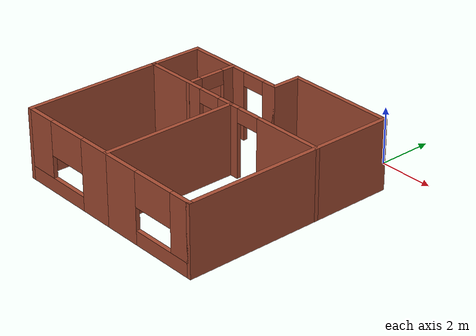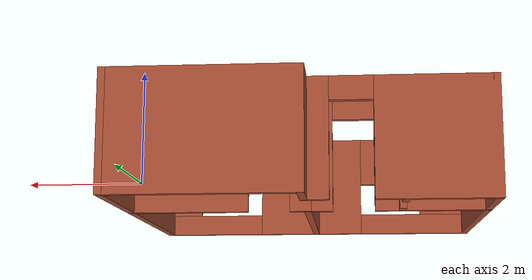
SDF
<?xml version='1.0'?>
<sdf version='1.6'>
  <model name='apartment'>
    <pose frame=''>-2.71612 -5.15016 0 0 -0 0</pose>
    <link name='Wall_12'>
      <collision name='Wall_12_Collision'>
        <geometry>
          <box>
            <size>3 0.15 2.5</size>
          </box>
        </geometry>
        <pose frame=''>0 0 1.25 0 -0 0</pose>
      </collision>
      <visual name='Wall_12_Visual'>
        <pose frame=''>0 0 1.25 0 -0 0</pose>
        <geometry>
          <box>
            <size>3 0.15 2.5</size>
          </box>
        </geometry>
        <material>
          <script>
            <uri>file://media/materials/scripts/gazebo.material</uri>
            <name>Gazebo/Bricks</name>
          </script>
          <ambient>1 1 1 1</ambient>
        </material>
        <meta>
          <layer>0</layer>
        </meta>
      </visual>
      <pose frame=''>3.85 2.425 0 0 -0 -1.5708</pose>
    </link>
    <link name='Wall_14'>
      <pose frame=''>1.925 1 0 0 -0 3.14159</pose>
      <visual name='Wall_14_Visual_0'>
        <pose frame=''>-0.681236 0 1.25 0 -0 0</pose>
        <geometry>
          <box>
            <size>2.63753 0.15 2.5</size>
          </box>
        </geometry>
        <material>
          <script>
            <uri>file://media/materials/scripts/gazebo.material</uri>
            <name>Gazebo/Bricks</name>
          </script>
          <ambient>0.760784 0.662745 0.627451 1</ambient>
        </material>
        <meta>
          <layer>0</layer>
        </meta>
      </visual>
      <collision name='Wall_14_Collision_0'>
        <geometry>
          <box>
            <size>2.63753 0.15 2.5</size>
          </box>
        </geometry>
        <pose frame=''>-0.681236 0 1.25 0 -0 0</pose>
      </collision>
      <visual name='Wall_14_Visual_1'>
        <pose frame=''>1.76876 0 1.25 0 -0 0</pose>
        <geometry>
          <box>
            <size>0.462473 0.15 2.5</size>
          </box>
        </geometry>
        <material>
          <script>
            <uri>file://media/materials/scripts/gazebo.material</uri>
            <name>Gazebo/Bricks</name>
          </script>
          <ambient>0.760784 0.662745 0.627451 1</ambient>
        </material>
        <meta>
          <layer>0</layer>
        </meta>
      </visual>
      <collision name='Wall_14_Collision_1'>
        <geometry>
          <box>
            <size>0.462473 0.15 2.5</size>
          </box>
        </geometry>
        <pose frame=''>1.76876 0 1.25 0 -0 0</pose>
      </collision>
      <visual name='Wall_14_Visual_2'>
        <pose frame=''>1.08753 0 2.25 0 -0 0</pose>
        <geometry>
          <box>
            <size>0.9 0.15 0.5</size>
          </box>
        </geometry>
        <material>
          <script>
            <uri>file://media/materials/scripts/gazebo.material</uri>
            <name>Gazebo/Bricks</name>
          </script>
          <ambient>0.760784 0.662745 0.627451 1</ambient>
        </material>
        <meta>
          <layer>0</layer>
        </meta>
      </visual>
      <collision name='Wall_14_Collision_2'>
        <geometry>
          <box>
            <size>0.9 0.15 0.5</size>
          </box>
        </geometry>
        <pose frame=''>1.08753 0 2.25 0 -0 0</pose>
      </collision>
    </link>
    <link name='Wall_18'>
      <collision name='Wall_18_Collision'>
        <geometry>
          <box>
            <size>5 0.15 2.5</size>
          </box>
        </geometry>
        <pose frame=''>0 0 1.25 0 -0 0</pose>
      </collision>
      <visual name='Wall_18_Visual'>
        <pose frame=''>0 0 1.25 0 -0 0</pose>
        <geometry>
          <box>
            <size>5 0.15 2.5</size>
          </box>
        </geometry>
        <material>
          <script>
            <uri>file://media/materials/scripts/gazebo.material</uri>
            <name>Gazebo/Bricks</name>
          </script>
          <ambient>1 1 1 1</ambient>
        </material>
        <meta>
          <layer>0</layer>
        </meta>
      </visual>
      <pose frame=''>0 -1.425 0 0 -0 -1.5708</pose>
    </link>
    <link name='Wall_19'>
      <pose frame=''>1.925 -3.85 0 0 -0 0</pose>
      <visual name='Wall_19_Visual_0'>
        <pose frame=''>-1.24293 0 1.25 0 -0 0</pose>
        <geometry>
          <box>
            <size>1.51415 0.15 2.5</size>
          </box>
        </geometry>
        <material>
          <script>
            <uri>file://media/materials/scripts/gazebo.material</uri>
            <name>Gazebo/Bricks</name>
          </script>
          <ambient>1 1 1 1</ambient>
        </material>
        <meta>
          <layer>0</layer>
        </meta>
      </visual>
      <collision name='Wall_19_Collision_0'>
        <geometry>
          <box>
            <size>1.51415 0.15 2.5</size>
          </box>
        </geometry>
        <pose frame=''>-1.24293 0 1.25 0 -0 0</pose>
      </collision>
      <visual name='Wall_19_Visual_1'>
        <pose frame=''>0.757074 0 0.25 0 -0 0</pose>
        <geometry>
          <box>
            <size>2.48585 0.15 0.5</size>
          </box>
        </geometry>
        <material>
          <script>
            <uri>file://media/materials/scripts/gazebo.material</uri>
            <name>Gazebo/Bricks</name>
          </script>
          <ambient>1 1 1 1</ambient>
        </material>
        <meta>
          <layer>0</layer>
        </meta>
      </visual>
      <collision name='Wall_19_Collision_1'>
        <geometry>
          <box>
            <size>2.48585 0.15 0.5</size>
          </box>
        </geometry>
        <pose frame=''>0.757074 0 0.25 0 -0 0</pose>
      </collision>
      <visual name='Wall_19_Visual_2'>
        <pose frame=''>1.56451 0 1.5 0 -0 0</pose>
        <geometry>
          <box>
            <size>0.870975 0.15 2</size>
          </box>
        </geometry>
        <material>
          <script>
            <uri>file://media/materials/scripts/gazebo.material</uri>
            <name>Gazebo/Bricks</name>
          </script>
          <ambient>1 1 1 1</ambient>
        </material>
        <meta>
          <layer>0</layer>
        </meta>
      </visual>
      <collision name='Wall_19_Collision_2'>
        <geometry>
          <box>
            <size>0.870975 0.15 2</size>
          </box>
        </geometry>
        <pose frame=''>1.56451 0 1.5 0 -0 0</pose>
      </collision>
      <visual name='Wall_19_Visual_3'>
        <pose frame=''>0.321587 0 1.9 0 -0 0</pose>
        <geometry>
          <box>
            <size>1.61488 0.15 1.2</size>
          </box>
        </geometry>
        <material>
          <script>
            <uri>file://media/materials/scripts/gazebo.material</uri>
            <name>Gazebo/Bricks</name>
          </script>
          <ambient>1 1 1 1</ambient>
        </material>
        <meta>
          <layer>0</layer>
        </meta>
      </visual>
      <collision name='Wall_19_Collision_3'>
        <geometry>
          <box>
            <size>1.61488 0.15 1.2</size>
          </box>
        </geometry>
        <pose frame=''>0.321587 0 1.9 0 -0 0</pose>
      </collision>
    </link>
    <link name='Wall_20'>
      <collision name='Wall_20_Collision'>
        <geometry>
          <box>
            <size>5 0.15 2.5</size>
          </box>
        </geometry>
        <pose frame=''>0 0 1.25 0 -0 0</pose>
      </collision>
      <visual name='Wall_20_Visual'>
        <pose frame=''>0 0 1.25 0 -0 0</pose>
        <geometry>
          <box>
            <size>5 0.15 2.5</size>
          </box>
        </geometry>
        <material>
          <script>
            <uri>file://media/materials/scripts/gazebo.material</uri>
            <name>Gazebo/Bricks</name>
          </script>
          <ambient>1 1 1 1</ambient>
        </material>
        <meta>
          <layer>0</layer>
        </meta>
      </visual>
      <pose frame=''>3.85 -1.425 0 0 -0 1.5708</pose>
    </link>
    <link name='Wall_22'>
      <pose frame=''>-1.925 -3.85 0 0 -0 3.14159</pose>
      <visual name='Wall_22_Visual_0'>
        <pose frame=''>-1.3771 0 1.25 0 -0 0</pose>
        <geometry>
          <box>
            <size>1.2458 0.15 2.5</size>
          </box>
        </geometry>
        <material>
          <script>
            <uri>file://media/materials/scripts/gazebo.material</uri>
            <name>Gazebo/Bricks</name>
          </script>
          <ambient>1 1 1 1</ambient>
        </material>
        <meta>
          <layer>0</layer>
        </meta>
      </visual>
      <collision name='Wall_22_Collision_0'>
        <geometry>
          <box>
            <size>1.2458 0.15 2.5</size>
          </box>
        </geometry>
        <pose frame=''>-1.3771 0 1.25 0 -0 0</pose>
      </collision>
      <visual name='Wall_22_Visual_1'>
        <pose frame=''>0.622901 0 0.25 0 -0 0</pose>
        <geometry>
          <box>
            <size>2.7542 0.15 0.5</size>
          </box>
        </geometry>
        <material>
          <script>
            <uri>file://media/materials/scripts/gazebo.material</uri>
            <name>Gazebo/Bricks</name>
          </script>
          <ambient>1 1 1 1</ambient>
        </material>
        <meta>
          <layer>0</layer>
        </meta>
      </visual>
      <collision name='Wall_22_Collision_1'>
        <geometry>
          <box>
            <size>2.7542 0.15 0.5</size>
          </box>
        </geometry>
        <pose frame=''>0.622901 0 0.25 0 -0 0</pose>
      </collision>
      <visual name='Wall_22_Visual_2'>
        <pose frame=''>1.39273 0 1.5 0 -0 0</pose>
        <geometry>
          <box>
            <size>1.21454 0.15 2</size>
          </box>
        </geometry>
        <material>
          <script>
            <uri>file://media/materials/scripts/gazebo.material</uri>
            <name>Gazebo/Bricks</name>
          </script>
          <ambient>1 1 1 1</ambient>
        </material>
        <meta>
          <layer>0</layer>
        </meta>
      </visual>
      <collision name='Wall_22_Collision_2'>
        <geometry>
          <box>
            <size>1.21454 0.15 2</size>
          </box>
        </geometry>
        <pose frame=''>1.39273 0 1.5 0 -0 0</pose>
      </collision>
      <visual name='Wall_22_Visual_3'>
        <pose frame=''>0.01563 0 1.9 0 -0 0</pose>
        <geometry>
          <box>
            <size>1.53966 0.15 1.2</size>
          </box>
        </geometry>
        <material>
          <script>
            <uri>file://media/materials/scripts/gazebo.material</uri>
            <name>Gazebo/Bricks</name>
          </script>
          <ambient>1 1 1 1</ambient>
        </material>
        <meta>
          <layer>0</layer>
        </meta>
      </visual>
      <collision name='Wall_22_Collision_3'>
        <geometry>
          <box>
            <size>1.53966 0.15 1.2</size>
          </box>
        </geometry>
        <pose frame=''>0.01563 0 1.9 0 -0 0</pose>
      </collision>
    </link>
    <link name='Wall_23'>
      <collision name='Wall_23_Collision'>
        <geometry>
          <box>
            <size>5 0.15 2.5</size>
          </box>
        </geometry>
        <pose frame=''>0 0 1.25 0 -0 0</pose>
      </collision>
      <visual name='Wall_23_Visual'>
        <pose frame=''>0 0 1.25 0 -0 0</pose>
        <geometry>
          <box>
            <size>5 0.15 2.5</size>
          </box>
        </geometry>
        <material>
          <script>
            <uri>file://media/materials/scripts/gazebo.material</uri>
            <name>Gazebo/Bricks</name>
          </script>
          <ambient>1 1 1 1</ambient>
        </material>
        <meta>
          <layer>0</layer>
        </meta>
      </visual>
      <pose frame=''>-3.85 -1.425 0 0 -0 1.5708</pose>
    </link>
    <link name='Wall_24'>
      <pose frame=''>-1.925 1 0 0 -0 0</pose>
      <visual name='Wall_24_Visual_0'>
        <pose frame=''>-0.758531 0 1.25 0 -0 0</pose>
        <geometry>
          <box>
            <size>2.48294 0.15 2.5</size>
          </box>
        </geometry>
        <material>
          <script>
            <uri>file://media/materials/scripts/gazebo.material</uri>
            <name>Gazebo/Bricks</name>
          </script>
          <ambient>1 1 1 1</ambient>
        </material>
        <meta>
          <layer>0</layer>
        </meta>
      </visual>
      <collision name='Wall_24_Collision_0'>
        <geometry>
          <box>
            <size>2.48294 0.15 2.5</size>
          </box>
        </geometry>
        <pose frame=''>-0.758531 0 1.25 0 -0 0</pose>
      </collision>
      <visual name='Wall_24_Visual_1'>
        <pose frame=''>1.69147 0 1.25 0 -0 0</pose>
        <geometry>
          <box>
            <size>0.617061 0.15 2.5</size>
          </box>
        </geometry>
        <material>
          <script>
            <uri>file://media/materials/scripts/gazebo.material</uri>
            <name>Gazebo/Bricks</name>
          </script>
          <ambient>1 1 1 1</ambient>
        </material>
        <meta>
          <layer>0</layer>
        </meta>
      </visual>
      <collision name='Wall_24_Collision_1'>
        <geometry>
          <box>
            <size>0.617061 0.15 2.5</size>
          </box>
        </geometry>
        <pose frame=''>1.69147 0 1.25 0 -0 0</pose>
      </collision>
      <visual name='Wall_24_Visual_2'>
        <pose frame=''>0.932939 0 2.25 0 -0 0</pose>
        <geometry>
          <box>
            <size>0.9 0.15 0.5</size>
          </box>
        </geometry>
        <material>
          <script>
            <uri>file://media/materials/scripts/gazebo.material</uri>
            <name>Gazebo/Bricks</name>
          </script>
          <ambient>1 1 1 1</ambient>
        </material>
        <meta>
          <layer>0</layer>
        </meta>
      </visual>
      <collision name='Wall_24_Collision_2'>
        <geometry>
          <box>
            <size>0.9 0.15 0.5</size>
          </box>
        </geometry>
        <pose frame=''>0.932939 0 2.25 0 -0 0</pose>
      </collision>
    </link>
    <link name='Wall_26'>
      <collision name='Wall_26_Collision'>
        <geometry>
          <box>
            <size>2 0.15 2.5</size>
          </box>
        </geometry>
        <pose frame=''>0 0 1.25 0 -0 0</pose>
      </collision>
      <visual name='Wall_26_Visual'>
        <pose frame=''>0 0 1.25 0 -0 0</pose>
        <geometry>
          <box>
            <size>2 0.15 2.5</size>
          </box>
        </geometry>
        <material>
          <script>
            <uri>file://media/materials/scripts/gazebo.material</uri>
            <name>Gazebo/Bricks</name>
          </script>
          <ambient>1 1 1 1</ambient>
        </material>
        <meta>
          <layer>0</layer>
        </meta>
      </visual>
      <pose frame=''>-3.85 1.925 0 0 -0 1.5708</pose>
    </link>
    <link name='Wall_38'>
      <collision name='Wall_38_Collision'>
        <geometry>
          <box>
            <size>4 0.15 2.5</size>
          </box>
        </geometry>
        <pose frame=''>0 0 1.25 0 -0 0</pose>
      </collision>
      <visual name='Wall_38_Visual'>
        <pose frame=''>0 0 1.25 0 -0 0</pose>
        <geometry>
          <box>
            <size>4 0.15 2.5</size>
          </box>
        </geometry>
        <material>
          <script>
            <uri>file://media/materials/scripts/gazebo.material</uri>
            <name>Gazebo/Bricks</name>
          </script>
          <ambient>0.760784 0.662745 0.627451 1</ambient>
        </material>
        <meta>
          <layer>0</layer>
        </meta>
      </visual>
      <pose frame=''>1.925 3.85 0 0 -0 3.14159</pose>
    </link>
    <link name='Wall_46'>
      <pose frame=''>-1.925 2.85 0 0 -0 0</pose>
      <visual name='Wall_46_Visual_0'>
        <pose frame=''>-0.744312 0 1.25 0 -0 0</pose>
        <geometry>
          <box>
            <size>2.51138 0.15 2.5</size>
          </box>
        </geometry>
        <material>
          <script>
            <uri>file://media/materials/scripts/gazebo.material</uri>
            <name>Gazebo/Bricks</name>
          </script>
          <ambient>1 1 1 1</ambient>
        </material>
        <meta>
          <layer>0</layer>
        </meta>
      </visual>
      <collision name='Wall_46_Collision_0'>
        <geometry>
          <box>
            <size>2.51138 0.15 2.5</size>
          </box>
        </geometry>
        <pose frame=''>-0.744312 0 1.25 0 -0 0</pose>
      </collision>
      <visual name='Wall_46_Visual_1'>
        <pose frame=''>1.70569 0 1.25 0 -0 0</pose>
        <geometry>
          <box>
            <size>0.588623 0.15 2.5</size>
          </box>
        </geometry>
        <material>
          <script>
            <uri>file://media/materials/scripts/gazebo.material</uri>
            <name>Gazebo/Bricks</name>
          </script>
          <ambient>1 1 1 1</ambient>
        </material>
        <meta>
          <layer>0</layer>
        </meta>
      </visual>
      <collision name='Wall_46_Collision_1'>
        <geometry>
          <box>
            <size>0.588623 0.15 2.5</size>
          </box>
        </geometry>
        <pose frame=''>1.70569 0 1.25 0 -0 0</pose>
      </collision>
      <visual name='Wall_46_Visual_2'>
        <pose frame=''>0.961377 0 2.25 0 -0 0</pose>
        <geometry>
          <box>
            <size>0.9 0.15 0.5</size>
          </box>
        </geometry>
        <material>
          <script>
            <uri>file://media/materials/scripts/gazebo.material</uri>
            <name>Gazebo/Bricks</name>
          </script>
          <ambient>1 1 1 1</ambient>
        </material>
        <meta>
          <layer>0</layer>
        </meta>
      </visual>
      <collision name='Wall_46_Collision_2'>
        <geometry>
          <box>
            <size>0.9 0.15 0.5</size>
          </box>
        </geometry>
        <pose frame=''>0.961377 0 2.25 0 -0 0</pose>
      </collision>
    </link>
    <link name='Wall_47'>
      <collision name='Wall_47_Collision'>
        <geometry>
          <box>
            <size>1.15 0.15 2.5</size>
          </box>
        </geometry>
        <pose frame=''>0 0 1.25 0 -0 0</pose>
      </collision>
      <visual name='Wall_47_Visual'>
        <pose frame=''>0 0 1.25 0 -0 0</pose>
        <geometry>
          <box>
            <size>1.15 0.15 2.5</size>
          </box>
        </geometry>
        <material>
          <script>
            <uri>file://media/materials/scripts/gazebo.material</uri>
            <name>Gazebo/Bricks</name>
          </script>
          <ambient>1 1 1 1</ambient>
        </material>
        <meta>
          <layer>0</layer>
        </meta>
      </visual>
      <pose frame=''>0 3.35 0 0 -0 1.5708</pose>
    </link>
    <link name='Wall_51'>
      <pose frame=''>-2.02899 1.92304 0 0 -0 -1.5708</pose>
      <visual name='Wall_51_Visual_0'>
        <pose frame=''>-0.721573 0 1.25 0 -0 0</pose>
        <geometry>
          <box>
            <size>0.556854 0.15 2.5</size>
          </box>
        </geometry>
        <material>
          <script>
            <uri>file://media/materials/scripts/gazebo.material</uri>
            <name>Gazebo/Bricks</name>
          </script>
          <ambient>1 1 1 1</ambient>
        </material>
        <meta>
          <layer>0</layer>
        </meta>
      </visual>
      <collision name='Wall_51_Collision_0'>
        <geometry>
          <box>
            <size>0.556854 0.15 2.5</size>
          </box>
        </geometry>
        <pose frame=''>-0.721573 0 1.25 0 -0 0</pose>
      </collision>
      <visual name='Wall_51_Visual_1'>
        <pose frame=''>0.728427 0 1.25 0 -0 0</pose>
        <geometry>
          <box>
            <size>0.543146 0.15 2.5</size>
          </box>
        </geometry>
        <material>
          <script>
            <uri>file://media/materials/scripts/gazebo.material</uri>
            <name>Gazebo/Bricks</name>
          </script>
          <ambient>1 1 1 1</ambient>
        </material>
        <meta>
          <layer>0</layer>
        </meta>
      </visual>
      <collision name='Wall_51_Collision_1'>
        <geometry>
          <box>
            <size>0.543146 0.15 2.5</size>
          </box>
        </geometry>
        <pose frame=''>0.728427 0 1.25 0 -0 0</pose>
      </collision>
      <visual name='Wall_51_Visual_2'>
        <pose frame=''>0.006854 0 2.25 0 -0 0</pose>
        <geometry>
          <box>
            <size>0.9 0.15 0.5</size>
          </box>
        </geometry>
        <material>
          <script>
            <uri>file://media/materials/scripts/gazebo.material</uri>
            <name>Gazebo/Bricks</name>
          </script>
          <ambient>1 1 1 1</ambient>
        </material>
        <meta>
          <layer>0</layer>
        </meta>
      </visual>
      <collision name='Wall_51_Collision_2'>
        <geometry>
          <box>
            <size>0.9 0.15 0.5</size>
          </box>
        </geometry>
        <pose frame=''>0.006854 0 2.25 0 -0 0</pose>
      </collision>
    </link>
    <static>1</static>
  </model>
</sdf>
